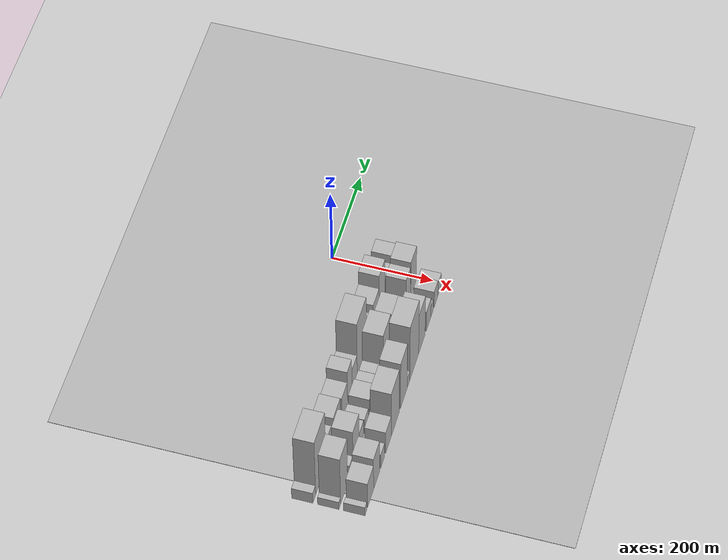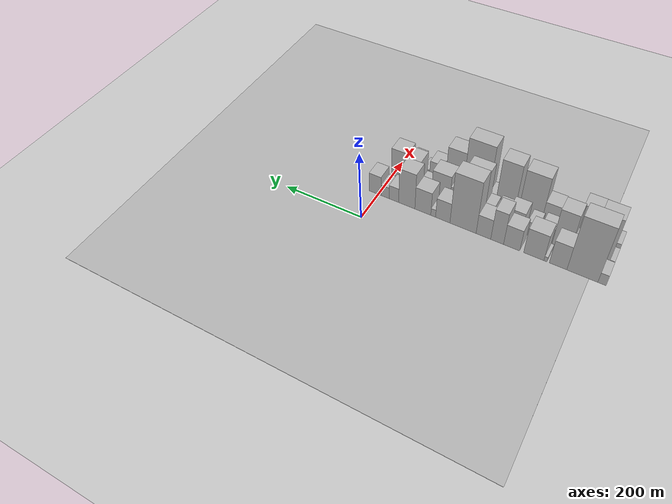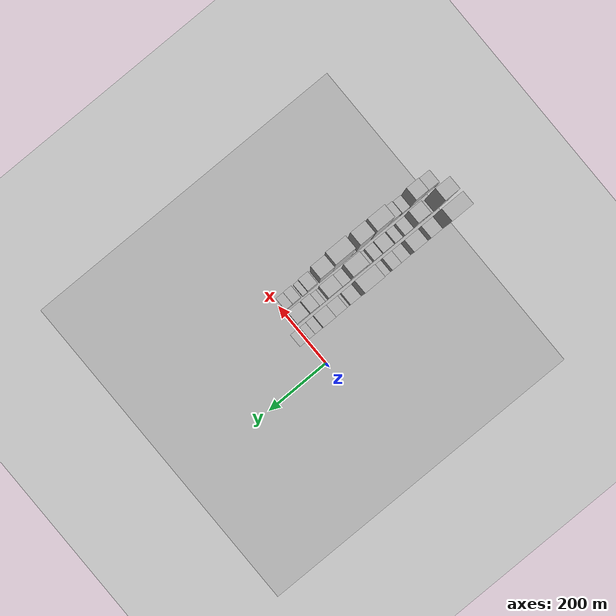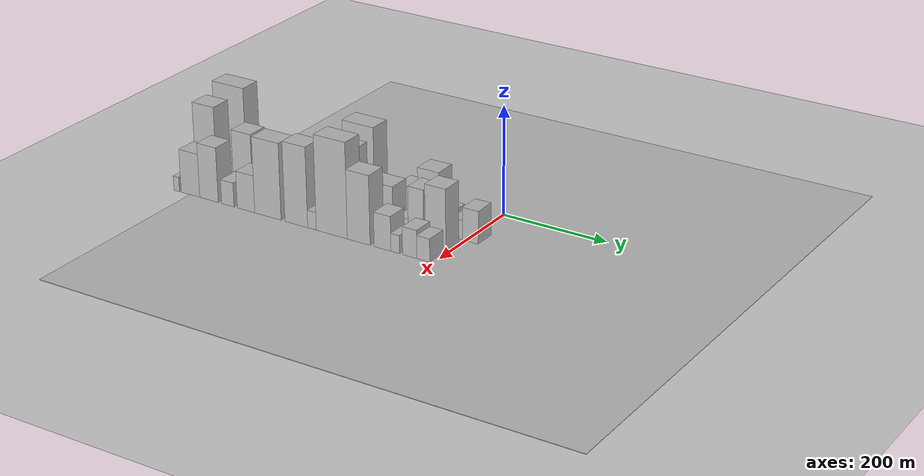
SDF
<sdf version="1.6">
 <world name="default">
  <include><name>ground_plane_1</name><uri>model://HANNAS_ground_plane</uri></include>
  <include>
   <name>ground_plane_2</name>
   <uri>model://HANNAS_ground_plane</uri>
   <pose>100 0 0  0 0 0</pose>
  </include>
  <model name="building_1">
   <static>1</static>
   <pose>100.0000 -527.2603 0 0.000000 0.000000 0.000000</pose>
   <link name="link">
    <pose>0 0 16.50 0 0 0</pose>
    <collision name="collision"><geometry><box><size>40.0000 17.4794 33.0000</size></box></geometry></collision>
    <visual name="visual">
     <cast_shadows>0</cast_shadows>
     <geometry><box><size>40.0000 17.4794 33.0000</size></box></geometry>
     <material>
      <script>
       <uri>model://HANNAS_wall/materials/scripts</uri>
       <uri>model://HANNAS_wall/materials/textures</uri>
       <name>vrc/HANNAS_wall</name>
      </script>
     </material>
    </visual>
   </link>
  </model>
  <model name="building_2">
   <static>1</static>
   <pose>100.0000 -485.1375 0 0.000000 0.000000 0.000000</pose>
   <link name="link">
    <pose>0 0 87.00 0 0 0</pose>
    <collision name="collision"><geometry><box><size>40.0000 66.7662 174.0000</size></box></geometry></collision>
    <visual name="visual">
     <cast_shadows>0</cast_shadows>
     <geometry><box><size>40.0000 66.7662 174.0000</size></box></geometry>
     <material>
      <script>
       <uri>model://HANNAS_wall/materials/scripts</uri>
       <uri>model://HANNAS_wall/materials/textures</uri>
       <name>vrc/HANNAS_wall</name>
      </script>
     </material>
    </visual>
   </link>
  </model>
  <model name="building_3">
   <static>1</static>
   <pose>100.0000 -432.5556 0 0.000000 0.000000 0.000000</pose>
   <link name="link">
    <pose>0 0 37.50 0 0 0</pose>
    <collision name="collision"><geometry><box><size>40.0000 38.3976 75.0000</size></box></geometry></collision>
    <visual name="visual">
     <cast_shadows>0</cast_shadows>
     <geometry><box><size>40.0000 38.3976 75.0000</size></box></geometry>
     <material>
      <script>
       <uri>model://HANNAS_wall/materials/scripts</uri>
       <uri>model://HANNAS_wall/materials/textures</uri>
       <name>vrc/HANNAS_wall</name>
      </script>
     </material>
    </visual>
   </link>
  </model>
  <model name="building_4">
   <static>1</static>
   <pose>100.0000 -404.8420 0 0.000000 0.000000 0.000000</pose>
   <link name="link">
    <pose>0 0 7.50 0 0 0</pose>
    <collision name="collision"><geometry><box><size>40.0000 7.0295 15.0000</size></box></geometry></collision>
    <visual name="visual">
     <cast_shadows>0</cast_shadows>
     <geometry><box><size>40.0000 7.0295 15.0000</size></box></geometry>
     <material>
      <script>
       <uri>model://HANNAS_wall/materials/scripts</uri>
       <uri>model://HANNAS_wall/materials/textures</uri>
       <name>vrc/HANNAS_wall</name>
      </script>
     </material>
    </visual>
   </link>
  </model>
  <model name="building_5">
   <static>1</static>
   <pose>100.0000 -378.5148 0 0.000000 0.000000 0.000000</pose>
   <link name="link">
    <pose>0 0 40.50 0 0 0</pose>
    <collision name="collision"><geometry><box><size>40.0000 45.6248 81.0000</size></box></geometry></collision>
    <visual name="visual">
     <cast_shadows>0</cast_shadows>
     <geometry><box><size>40.0000 45.6248 81.0000</size></box></geometry>
     <material>
      <script>
       <uri>model://HANNAS_wall/materials/scripts</uri>
       <uri>model://HANNAS_wall/materials/textures</uri>
       <name>vrc/HANNAS_wall</name>
      </script>
     </material>
    </visual>
   </link>
  </model>
  <model name="building_6">
   <static>1</static>
   <pose>100.0000 -328.0879 0 0.000000 0.000000 0.000000</pose>
   <link name="link">
    <pose>0 0 33.00 0 0 0</pose>
    <collision name="collision"><geometry><box><size>40.0000 37.2291 66.0000</size></box></geometry></collision>
    <visual name="visual">
     <cast_shadows>0</cast_shadows>
     <geometry><box><size>40.0000 37.2291 66.0000</size></box></geometry>
     <material>
      <script>
       <uri>model://HANNAS_wall/materials/scripts</uri>
       <uri>model://HANNAS_wall/materials/textures</uri>
       <name>vrc/HANNAS_wall</name>
      </script>
     </material>
    </visual>
   </link>
  </model>
  <model name="building_7">
   <static>1</static>
   <pose>100.0000 -294.4978 0 0.000000 0.000000 0.000000</pose>
   <link name="link">
    <pose>0 0 49.50 0 0 0</pose>
    <collision name="collision"><geometry><box><size>40.0000 29.9511 99.0000</size></box></geometry></collision>
    <visual name="visual">
     <cast_shadows>0</cast_shadows>
     <geometry><box><size>40.0000 29.9511 99.0000</size></box></geometry>
     <material>
      <script>
       <uri>model://HANNAS_wall/materials/scripts</uri>
       <uri>model://HANNAS_wall/materials/textures</uri>
       <name>vrc/HANNAS_wall</name>
      </script>
     </material>
    </visual>
   </link>
  </model>
  <model name="building_8">
   <static>1</static>
   <pose>100.0000 -262.1933 0 0.000000 0.000000 0.000000</pose>
   <link name="link">
    <pose>0 0 31.50 0 0 0</pose>
    <collision name="collision"><geometry><box><size>40.0000 34.6579 63.0000</size></box></geometry></collision>
    <visual name="visual">
     <cast_shadows>0</cast_shadows>
     <geometry><box><size>40.0000 34.6579 63.0000</size></box></geometry>
     <material>
      <script>
       <uri>model://HANNAS_wall/materials/scripts</uri>
       <uri>model://HANNAS_wall/materials/textures</uri>
       <name>vrc/HANNAS_wall</name>
      </script>
     </material>
    </visual>
   </link>
  </model>
  <model name="building_9">
   <static>1</static>
   <pose>100.0000 -213.1922 0 0.000000 0.000000 0.000000</pose>
   <link name="link">
    <pose>0 0 81.00 0 0 0</pose>
    <collision name="collision"><geometry><box><size>40.0000 63.3443 162.0000</size></box></geometry></collision>
    <visual name="visual">
     <cast_shadows>0</cast_shadows>
     <geometry><box><size>40.0000 63.3443 162.0000</size></box></geometry>
     <material>
      <script>
       <uri>model://HANNAS_wall/materials/scripts</uri>
       <uri>model://HANNAS_wall/materials/textures</uri>
       <name>vrc/HANNAS_wall</name>
      </script>
     </material>
    </visual>
   </link>
  </model>
  <model name="building_10">
   <static>1</static>
   <pose>100.0000 -163.7489 0 0.000000 0.000000 0.000000</pose>
   <link name="link">
    <pose>0 0 31.50 0 0 0</pose>
    <collision name="collision"><geometry><box><size>40.0000 35.5423 63.0000</size></box></geometry></collision>
    <visual name="visual">
     <cast_shadows>0</cast_shadows>
     <geometry><box><size>40.0000 35.5423 63.0000</size></box></geometry>
     <material>
      <script>
       <uri>model://HANNAS_wall/materials/scripts</uri>
       <uri>model://HANNAS_wall/materials/textures</uri>
       <name>vrc/HANNAS_wall</name>
      </script>
     </material>
    </visual>
   </link>
  </model>
  <model name="building_11">
   <static>1</static>
   <pose>100.0000 -140.0537 0 0.000000 0.000000 0.000000</pose>
   <link name="link">
    <pose>0 0 12.00 0 0 0</pose>
    <collision name="collision"><geometry><box><size>40.0000 11.8480 24.0000</size></box></geometry></collision>
    <visual name="visual">
     <cast_shadows>0</cast_shadows>
     <geometry><box><size>40.0000 11.8480 24.0000</size></box></geometry>
     <material>
      <script>
       <uri>model://HANNAS_wall/materials/scripts</uri>
       <uri>model://HANNAS_wall/materials/textures</uri>
       <name>vrc/HANNAS_wall</name>
      </script>
     </material>
    </visual>
   </link>
  </model>
  <model name="building_12">
   <static>1</static>
   <pose>100.0000 -114.0702 0 0.000000 0.000000 0.000000</pose>
   <link name="link">
    <pose>0 0 36.00 0 0 0</pose>
    <collision name="collision"><geometry><box><size>40.0000 40.1191 72.0000</size></box></geometry></collision>
    <visual name="visual">
     <cast_shadows>0</cast_shadows>
     <geometry><box><size>40.0000 40.1191 72.0000</size></box></geometry>
     <material>
      <script>
       <uri>model://HANNAS_wall/materials/scripts</uri>
       <uri>model://HANNAS_wall/materials/textures</uri>
       <name>vrc/HANNAS_wall</name>
      </script>
     </material>
    </visual>
   </link>
  </model>
  <model name="building_13">
   <static>1</static>
   <pose>100.0000 -73.1719 0 0.000000 0.000000 0.000000</pose>
   <link name="link">
    <pose>0 0 55.50 0 0 0</pose>
    <collision name="collision"><geometry><box><size>40.0000 41.6777 111.0000</size></box></geometry></collision>
    <visual name="visual">
     <cast_shadows>0</cast_shadows>
     <geometry><box><size>40.0000 41.6777 111.0000</size></box></geometry>
     <material>
      <script>
       <uri>model://HANNAS_wall/materials/scripts</uri>
       <uri>model://HANNAS_wall/materials/textures</uri>
       <name>vrc/HANNAS_wall</name>
      </script>
     </material>
    </visual>
   </link>
  </model>
  <model name="building_14">
   <static>1</static>
   <pose>100.0000 -39.7930 0 0.000000 0.000000 0.000000</pose>
   <link name="link">
    <pose>0 0 22.50 0 0 0</pose>
    <collision name="collision"><geometry><box><size>40.0000 25.0800 45.0000</size></box></geometry></collision>
    <visual name="visual">
     <cast_shadows>0</cast_shadows>
     <geometry><box><size>40.0000 25.0800 45.0000</size></box></geometry>
     <material>
      <script>
       <uri>model://HANNAS_wall/materials/scripts</uri>
       <uri>model://HANNAS_wall/materials/textures</uri>
       <name>vrc/HANNAS_wall</name>
      </script>
     </material>
    </visual>
   </link>
  </model>
  <model name="building_15">
   <static>1</static>
   <pose>100.0000 -16.8667 0 0.000000 0.000000 0.000000</pose>
   <link name="link">
    <pose>0 0 18.00 0 0 0</pose>
    <collision name="collision"><geometry><box><size>40.0000 20.7725 36.0000</size></box></geometry></collision>
    <visual name="visual">
     <cast_shadows>0</cast_shadows>
     <geometry><box><size>40.0000 20.7725 36.0000</size></box></geometry>
     <material>
      <script>
       <uri>model://HANNAS_wall/materials/scripts</uri>
       <uri>model://HANNAS_wall/materials/textures</uri>
       <name>vrc/HANNAS_wall</name>
      </script>
     </material>
    </visual>
   </link>
  </model>
  <model name="building_16">
   <static>1</static>
   <pose>100.0000 9.0122 0 0.000000 0.000000 0.000000</pose>
   <link name="link">
    <pose>0 0 30.00 0 0 0</pose>
    <collision name="collision"><geometry><box><size>40.0000 30.9853 60.0000</size></box></geometry></collision>
    <visual name="visual">
     <cast_shadows>0</cast_shadows>
     <geometry><box><size>40.0000 30.9853 60.0000</size></box></geometry>
     <material>
      <script>
       <uri>model://HANNAS_wall/materials/scripts</uri>
       <uri>model://HANNAS_wall/materials/textures</uri>
       <name>vrc/HANNAS_wall</name>
      </script>
     </material>
    </visual>
   </link>
  </model>
  <model name="building_31">
   <static>1</static>
   <pose>149.0000 -530.6760 0 0.000000 0.000000 0.000000</pose>
   <link name="link">
    <pose>0 0 12.00 0 0 0</pose>
    <collision name="collision"><geometry><box><size>40.0000 10.6480 24.0000</size></box></geometry></collision>
    <visual name="visual">
     <cast_shadows>0</cast_shadows>
     <geometry><box><size>40.0000 10.6480 24.0000</size></box></geometry>
     <material>
      <script>
       <uri>model://HANNAS_wall/materials/scripts</uri>
       <uri>model://HANNAS_wall/materials/textures</uri>
       <name>vrc/HANNAS_wall</name>
      </script>
     </material>
    </visual>
   </link>
  </model>
  <model name="building_32">
   <static>1</static>
   <pose>149.0000 -502.1637 0 0.000000 0.000000 0.000000</pose>
   <link name="link">
    <pose>0 0 75.00 0 0 0</pose>
    <collision name="collision"><geometry><box><size>40.0000 46.3765 150.0000</size></box></geometry></collision>
    <visual name="visual">
     <cast_shadows>0</cast_shadows>
     <geometry><box><size>40.0000 46.3765 150.0000</size></box></geometry>
     <material>
      <script>
       <uri>model://HANNAS_wall/materials/scripts</uri>
       <uri>model://HANNAS_wall/materials/textures</uri>
       <name>vrc/HANNAS_wall</name>
      </script>
     </material>
    </visual>
   </link>
  </model>
  <model name="building_33">
   <static>1</static>
   <pose>149.0000 -475.7980 0 0.000000 0.000000 0.000000</pose>
   <link name="link">
    <pose>0 0 7.50 0 0 0</pose>
    <collision name="collision"><geometry><box><size>40.0000 6.3549 15.0000</size></box></geometry></collision>
    <visual name="visual">
     <cast_shadows>0</cast_shadows>
     <geometry><box><size>40.0000 6.3549 15.0000</size></box></geometry>
     <material>
      <script>
       <uri>model://HANNAS_wall/materials/scripts</uri>
       <uri>model://HANNAS_wall/materials/textures</uri>
       <name>vrc/HANNAS_wall</name>
      </script>
     </material>
    </visual>
   </link>
  </model>
  <model name="building_34">
   <static>1</static>
   <pose>149.0000 -469.1543 0 0.000000 0.000000 0.000000</pose>
   <link name="link">
    <pose>0 0 7.50 0 0 0</pose>
    <collision name="collision"><geometry><box><size>40.0000 6.9325 15.0000</size></box></geometry></collision>
    <visual name="visual">
     <cast_shadows>0</cast_shadows>
     <geometry><box><size>40.0000 6.9325 15.0000</size></box></geometry>
     <material>
      <script>
       <uri>model://HANNAS_wall/materials/scripts</uri>
       <uri>model://HANNAS_wall/materials/textures</uri>
       <name>vrc/HANNAS_wall</name>
      </script>
     </material>
    </visual>
   </link>
  </model>
  <model name="building_35">
   <static>1</static>
   <pose>149.0000 -454.3602 0 0.000000 0.000000 0.000000</pose>
   <link name="link">
    <pose>0 0 19.50 0 0 0</pose>
    <collision name="collision"><geometry><box><size>40.0000 22.6557 39.0000</size></box></geometry></collision>
    <visual name="visual">
     <cast_shadows>0</cast_shadows>
     <geometry><box><size>40.0000 22.6557 39.0000</size></box></geometry>
     <material>
      <script>
       <uri>model://HANNAS_wall/materials/scripts</uri>
       <uri>model://HANNAS_wall/materials/textures</uri>
       <name>vrc/HANNAS_wall</name>
      </script>
     </material>
    </visual>
   </link>
  </model>
  <model name="building_36">
   <static>1</static>
   <pose>149.0000 -422.4298 0 0.000000 0.000000 0.000000</pose>
   <link name="link">
    <pose>0 0 58.50 0 0 0</pose>
    <collision name="collision"><geometry><box><size>40.0000 41.2049 117.0000</size></box></geometry></collision>
    <visual name="visual">
     <cast_shadows>0</cast_shadows>
     <geometry><box><size>40.0000 41.2049 117.0000</size></box></geometry>
     <material>
      <script>
       <uri>model://HANNAS_wall/materials/scripts</uri>
       <uri>model://HANNAS_wall/materials/textures</uri>
       <name>vrc/HANNAS_wall</name>
      </script>
     </material>
    </visual>
   </link>
  </model>
  <model name="building_37">
   <static>1</static>
   <pose>149.0000 -386.6518 0 0.000000 0.000000 0.000000</pose>
   <link name="link">
    <pose>0 0 25.50 0 0 0</pose>
    <collision name="collision"><geometry><box><size>40.0000 30.3512 51.0000</size></box></geometry></collision>
    <visual name="visual">
     <cast_shadows>0</cast_shadows>
     <geometry><box><size>40.0000 30.3512 51.0000</size></box></geometry>
     <material>
      <script>
       <uri>model://HANNAS_wall/materials/scripts</uri>
       <uri>model://HANNAS_wall/materials/textures</uri>
       <name>vrc/HANNAS_wall</name>
      </script>
     </material>
    </visual>
   </link>
  </model>
  <model name="building_38">
   <static>1</static>
   <pose>149.0000 -353.5843 0 0.000000 0.000000 0.000000</pose>
   <link name="link">
    <pose>0 0 22.50 0 0 0</pose>
    <collision name="collision"><geometry><box><size>40.0000 25.7837 45.0000</size></box></geometry></collision>
    <visual name="visual">
     <cast_shadows>0</cast_shadows>
     <geometry><box><size>40.0000 25.7837 45.0000</size></box></geometry>
     <material>
      <script>
       <uri>model://HANNAS_wall/materials/scripts</uri>
       <uri>model://HANNAS_wall/materials/textures</uri>
       <name>vrc/HANNAS_wall</name>
      </script>
     </material>
    </visual>
   </link>
  </model>
  <model name="building_39">
   <static>1</static>
   <pose>149.0000 -314.9544 0 0.000000 0.000000 0.000000</pose>
   <link name="link">
    <pose>0 0 31.50 0 0 0</pose>
    <collision name="collision"><geometry><box><size>40.0000 37.4761 63.0000</size></box></geometry></collision>
    <visual name="visual">
     <cast_shadows>0</cast_shadows>
     <geometry><box><size>40.0000 37.4761 63.0000</size></box></geometry>
     <material>
      <script>
       <uri>model://HANNAS_wall/materials/scripts</uri>
       <uri>model://HANNAS_wall/materials/textures</uri>
       <name>vrc/HANNAS_wall</name>
      </script>
     </material>
    </visual>
   </link>
  </model>
  <model name="building_40">
   <static>1</static>
   <pose>149.0000 -281.8113 0 0.000000 0.000000 0.000000</pose>
   <link name="link">
    <pose>0 0 25.50 0 0 0</pose>
    <collision name="collision"><geometry><box><size>40.0000 28.8101 51.0000</size></box></geometry></collision>
    <visual name="visual">
     <cast_shadows>0</cast_shadows>
     <geometry><box><size>40.0000 28.8101 51.0000</size></box></geometry>
     <material>
      <script>
       <uri>model://HANNAS_wall/materials/scripts</uri>
       <uri>model://HANNAS_wall/materials/textures</uri>
       <name>vrc/HANNAS_wall</name>
      </script>
     </material>
    </visual>
   </link>
  </model>
  <model name="building_41">
   <static>1</static>
   <pose>149.0000 -251.8208 0 0.000000 0.000000 0.000000</pose>
   <link name="link">
    <pose>0 0 22.50 0 0 0</pose>
    <collision name="collision"><geometry><box><size>40.0000 23.1710 45.0000</size></box></geometry></collision>
    <visual name="visual">
     <cast_shadows>0</cast_shadows>
     <geometry><box><size>40.0000 23.1710 45.0000</size></box></geometry>
     <material>
      <script>
       <uri>model://HANNAS_wall/materials/scripts</uri>
       <uri>model://HANNAS_wall/materials/textures</uri>
       <name>vrc/HANNAS_wall</name>
      </script>
     </material>
    </visual>
   </link>
  </model>
  <model name="building_42">
   <static>1</static>
   <pose>149.0000 -214.3614 0 0.000000 0.000000 0.000000</pose>
   <link name="link">
    <pose>0 0 69.00 0 0 0</pose>
    <collision name="collision"><geometry><box><size>40.0000 51.7477 138.0000</size></box></geometry></collision>
    <visual name="visual">
     <cast_shadows>0</cast_shadows>
     <geometry><box><size>40.0000 51.7477 138.0000</size></box></geometry>
     <material>
      <script>
       <uri>model://HANNAS_wall/materials/scripts</uri>
       <uri>model://HANNAS_wall/materials/textures</uri>
       <name>vrc/HANNAS_wall</name>
      </script>
     </material>
    </visual>
   </link>
  </model>
  <model name="building_43">
   <static>1</static>
   <pose>149.0000 -172.9483 0 0.000000 0.000000 0.000000</pose>
   <link name="link">
    <pose>0 0 30.00 0 0 0</pose>
    <collision name="collision"><geometry><box><size>40.0000 31.0785 60.0000</size></box></geometry></collision>
    <visual name="visual">
     <cast_shadows>0</cast_shadows>
     <geometry><box><size>40.0000 31.0785 60.0000</size></box></geometry>
     <material>
      <script>
       <uri>model://HANNAS_wall/materials/scripts</uri>
       <uri>model://HANNAS_wall/materials/textures</uri>
       <name>vrc/HANNAS_wall</name>
      </script>
     </material>
    </visual>
   </link>
  </model>
  <model name="building_44">
   <static>1</static>
   <pose>149.0000 -134.3167 0 0.000000 0.000000 0.000000</pose>
   <link name="link">
    <pose>0 0 45.00 0 0 0</pose>
    <collision name="collision"><geometry><box><size>40.0000 46.1847 90.0000</size></box></geometry></collision>
    <visual name="visual">
     <cast_shadows>0</cast_shadows>
     <geometry><box><size>40.0000 46.1847 90.0000</size></box></geometry>
     <material>
      <script>
       <uri>model://HANNAS_wall/materials/scripts</uri>
       <uri>model://HANNAS_wall/materials/textures</uri>
       <name>vrc/HANNAS_wall</name>
      </script>
     </material>
    </visual>
   </link>
  </model>
  <model name="building_45">
   <static>1</static>
   <pose>149.0000 -107.1081 0 0.000000 0.000000 0.000000</pose>
   <link name="link">
    <pose>0 0 9.00 0 0 0</pose>
    <collision name="collision"><geometry><box><size>40.0000 8.2325 18.0000</size></box></geometry></collision>
    <visual name="visual">
     <cast_shadows>0</cast_shadows>
     <geometry><box><size>40.0000 8.2325 18.0000</size></box></geometry>
     <material>
      <script>
       <uri>model://HANNAS_wall/materials/scripts</uri>
       <uri>model://HANNAS_wall/materials/textures</uri>
       <name>vrc/HANNAS_wall</name>
      </script>
     </material>
    </visual>
   </link>
  </model>
  <model name="building_46">
   <static>1</static>
   <pose>149.0000 -91.9620 0 0.000000 0.000000 0.000000</pose>
   <link name="link">
    <pose>0 0 19.50 0 0 0</pose>
    <collision name="collision"><geometry><box><size>40.0000 22.0598 39.0000</size></box></geometry></collision>
    <visual name="visual">
     <cast_shadows>0</cast_shadows>
     <geometry><box><size>40.0000 22.0598 39.0000</size></box></geometry>
     <material>
      <script>
       <uri>model://HANNAS_wall/materials/scripts</uri>
       <uri>model://HANNAS_wall/materials/textures</uri>
       <name>vrc/HANNAS_wall</name>
      </script>
     </material>
    </visual>
   </link>
  </model>
  <model name="building_47">
   <static>1</static>
   <pose>149.0000 -65.8754 0 0.000000 0.000000 0.000000</pose>
   <link name="link">
    <pose>0 0 49.50 0 0 0</pose>
    <collision name="collision"><geometry><box><size>40.0000 30.1134 99.0000</size></box></geometry></collision>
    <visual name="visual">
     <cast_shadows>0</cast_shadows>
     <geometry><box><size>40.0000 30.1134 99.0000</size></box></geometry>
     <material>
      <script>
       <uri>model://HANNAS_wall/materials/scripts</uri>
       <uri>model://HANNAS_wall/materials/textures</uri>
       <name>vrc/HANNAS_wall</name>
      </script>
     </material>
    </visual>
   </link>
  </model>
  <model name="building_48">
   <static>1</static>
   <pose>149.0000 -27.6340 0 0.000000 0.000000 0.000000</pose>
   <link name="link">
    <pose>0 0 55.50 0 0 0</pose>
    <collision name="collision"><geometry><box><size>40.0000 40.3695 111.0000</size></box></geometry></collision>
    <visual name="visual">
     <cast_shadows>0</cast_shadows>
     <geometry><box><size>40.0000 40.3695 111.0000</size></box></geometry>
     <material>
      <script>
       <uri>model://HANNAS_wall/materials/scripts</uri>
       <uri>model://HANNAS_wall/materials/textures</uri>
       <name>vrc/HANNAS_wall</name>
      </script>
     </material>
    </visual>
   </link>
  </model>
  <model name="building_66">
   <static>1</static>
   <pose>198.0000 -529.8317 0 0.000000 0.000000 0.000000</pose>
   <link name="link">
    <pose>0 0 13.50 0 0 0</pose>
    <collision name="collision"><geometry><box><size>40.0000 12.3367 27.0000</size></box></geometry></collision>
    <visual name="visual">
     <cast_shadows>0</cast_shadows>
     <geometry><box><size>40.0000 12.3367 27.0000</size></box></geometry>
     <material>
      <script>
       <uri>model://HANNAS_wall/materials/scripts</uri>
       <uri>model://HANNAS_wall/materials/textures</uri>
       <name>vrc/HANNAS_wall</name>
      </script>
     </material>
    </visual>
   </link>
  </model>
  <model name="building_67">
   <static>1</static>
   <pose>198.0000 -499.3544 0 0.000000 0.000000 0.000000</pose>
   <link name="link">
    <pose>0 0 40.50 0 0 0</pose>
    <collision name="collision"><geometry><box><size>40.0000 40.6179 81.0000</size></box></geometry></collision>
    <visual name="visual">
     <cast_shadows>0</cast_shadows>
     <geometry><box><size>40.0000 40.6179 81.0000</size></box></geometry>
     <material>
      <script>
       <uri>model://HANNAS_wall/materials/scripts</uri>
       <uri>model://HANNAS_wall/materials/textures</uri>
       <name>vrc/HANNAS_wall</name>
      </script>
     </material>
    </visual>
   </link>
  </model>
  <model name="building_68">
   <static>1</static>
   <pose>198.0000 -458.8203 0 0.000000 0.000000 0.000000</pose>
   <link name="link">
    <pose>0 0 51.00 0 0 0</pose>
    <collision name="collision"><geometry><box><size>40.0000 40.4504 102.0000</size></box></geometry></collision>
    <visual name="visual">
     <cast_shadows>0</cast_shadows>
     <geometry><box><size>40.0000 40.4504 102.0000</size></box></geometry>
     <material>
      <script>
       <uri>model://HANNAS_wall/materials/scripts</uri>
       <uri>model://HANNAS_wall/materials/textures</uri>
       <name>vrc/HANNAS_wall</name>
      </script>
     </material>
    </visual>
   </link>
  </model>
  <model name="building_69">
   <static>1</static>
   <pose>198.0000 -418.2202 0 0.000000 0.000000 0.000000</pose>
   <link name="link">
    <pose>0 0 22.50 0 0 0</pose>
    <collision name="collision"><geometry><box><size>40.0000 26.7500 45.0000</size></box></geometry></collision>
    <visual name="visual">
     <cast_shadows>0</cast_shadows>
     <geometry><box><size>40.0000 26.7500 45.0000</size></box></geometry>
     <material>
      <script>
       <uri>model://HANNAS_wall/materials/scripts</uri>
       <uri>model://HANNAS_wall/materials/textures</uri>
       <name>vrc/HANNAS_wall</name>
      </script>
     </material>
    </visual>
   </link>
  </model>
  <model name="building_70">
   <static>1</static>
   <pose>198.0000 -379.2963 0 0.000000 0.000000 0.000000</pose>
   <link name="link">
    <pose>0 0 34.50 0 0 0</pose>
    <collision name="collision"><geometry><box><size>40.0000 37.0977 69.0000</size></box></geometry></collision>
    <visual name="visual">
     <cast_shadows>0</cast_shadows>
     <geometry><box><size>40.0000 37.0977 69.0000</size></box></geometry>
     <material>
      <script>
       <uri>model://HANNAS_wall/materials/scripts</uri>
       <uri>model://HANNAS_wall/materials/textures</uri>
       <name>vrc/HANNAS_wall</name>
      </script>
     </material>
    </visual>
   </link>
  </model>
  <model name="building_71">
   <static>1</static>
   <pose>198.0000 -333.0107 0 0.000000 0.000000 0.000000</pose>
   <link name="link">
    <pose>0 0 70.50 0 0 0</pose>
    <collision name="collision"><geometry><box><size>40.0000 55.4733 141.0000</size></box></geometry></collision>
    <visual name="visual">
     <cast_shadows>0</cast_shadows>
     <geometry><box><size>40.0000 55.4733 141.0000</size></box></geometry>
     <material>
      <script>
       <uri>model://HANNAS_wall/materials/scripts</uri>
       <uri>model://HANNAS_wall/materials/textures</uri>
       <name>vrc/HANNAS_wall</name>
      </script>
     </material>
    </visual>
   </link>
  </model>
  <model name="building_72">
   <static>1</static>
   <pose>198.0000 -273.7879 0 0.000000 0.000000 0.000000</pose>
   <link name="link">
    <pose>0 0 73.50 0 0 0</pose>
    <collision name="collision"><geometry><box><size>40.0000 46.9724 147.0000</size></box></geometry></collision>
    <visual name="visual">
     <cast_shadows>0</cast_shadows>
     <geometry><box><size>40.0000 46.9724 147.0000</size></box></geometry>
     <material>
      <script>
       <uri>model://HANNAS_wall/materials/scripts</uri>
       <uri>model://HANNAS_wall/materials/textures</uri>
       <name>vrc/HANNAS_wall</name>
      </script>
     </material>
    </visual>
   </link>
  </model>
  <model name="building_73">
   <static>1</static>
   <pose>198.0000 -241.4409 0 0.000000 0.000000 0.000000</pose>
   <link name="link">
    <pose>0 0 16.50 0 0 0</pose>
    <collision name="collision"><geometry><box><size>40.0000 17.7215 33.0000</size></box></geometry></collision>
    <visual name="visual">
     <cast_shadows>0</cast_shadows>
     <geometry><box><size>40.0000 17.7215 33.0000</size></box></geometry>
     <material>
      <script>
       <uri>model://HANNAS_wall/materials/scripts</uri>
       <uri>model://HANNAS_wall/materials/textures</uri>
       <name>vrc/HANNAS_wall</name>
      </script>
     </material>
    </visual>
   </link>
  </model>
  <model name="building_74">
   <static>1</static>
   <pose>198.0000 -201.0453 0 0.000000 0.000000 0.000000</pose>
   <link name="link">
    <pose>0 0 87.00 0 0 0</pose>
    <collision name="collision"><geometry><box><size>40.0000 63.0697 174.0000</size></box></geometry></collision>
    <visual name="visual">
     <cast_shadows>0</cast_shadows>
     <geometry><box><size>40.0000 63.0697 174.0000</size></box></geometry>
     <material>
      <script>
       <uri>model://HANNAS_wall/materials/scripts</uri>
       <uri>model://HANNAS_wall/materials/textures</uri>
       <name>vrc/HANNAS_wall</name>
      </script>
     </material>
    </visual>
   </link>
  </model>
  <model name="building_75">
   <static>1</static>
   <pose>198.0000 -146.6977 0 0.000000 0.000000 0.000000</pose>
   <link name="link">
    <pose>0 0 63.00 0 0 0</pose>
    <collision name="collision"><geometry><box><size>40.0000 45.6255 126.0000</size></box></geometry></collision>
    <visual name="visual">
     <cast_shadows>0</cast_shadows>
     <geometry><box><size>40.0000 45.6255 126.0000</size></box></geometry>
     <material>
      <script>
       <uri>model://HANNAS_wall/materials/scripts</uri>
       <uri>model://HANNAS_wall/materials/textures</uri>
       <name>vrc/HANNAS_wall</name>
      </script>
     </material>
    </visual>
   </link>
  </model>
  <model name="building_76">
   <static>1</static>
   <pose>198.0000 -99.2928 0 0.000000 0.000000 0.000000</pose>
   <link name="link">
    <pose>0 0 31.50 0 0 0</pose>
    <collision name="collision"><geometry><box><size>40.0000 33.1843 63.0000</size></box></geometry></collision>
    <visual name="visual">
     <cast_shadows>0</cast_shadows>
     <geometry><box><size>40.0000 33.1843 63.0000</size></box></geometry>
     <material>
      <script>
       <uri>model://HANNAS_wall/materials/scripts</uri>
       <uri>model://HANNAS_wall/materials/textures</uri>
       <name>vrc/HANNAS_wall</name>
      </script>
     </material>
    </visual>
   </link>
  </model>
  <model name="building_77">
   <static>1</static>
   <pose>198.0000 -74.1456 0 0.000000 0.000000 0.000000</pose>
   <link name="link">
    <pose>0 0 16.50 0 0 0</pose>
    <collision name="collision"><geometry><box><size>40.0000 17.1100 33.0000</size></box></geometry></collision>
    <visual name="visual">
     <cast_shadows>0</cast_shadows>
     <geometry><box><size>40.0000 17.1100 33.0000</size></box></geometry>
     <material>
      <script>
       <uri>model://HANNAS_wall/materials/scripts</uri>
       <uri>model://HANNAS_wall/materials/textures</uri>
       <name>vrc/HANNAS_wall</name>
      </script>
     </material>
    </visual>
   </link>
  </model>
  <model name="building_78">
   <static>1</static>
   <pose>198.0000 -45.7106 0 0.000000 0.000000 0.000000</pose>
   <link name="link">
    <pose>0 0 25.50 0 0 0</pose>
    <collision name="collision"><geometry><box><size>40.0000 27.7600 51.0000</size></box></geometry></collision>
    <visual name="visual">
     <cast_shadows>0</cast_shadows>
     <geometry><box><size>40.0000 27.7600 51.0000</size></box></geometry>
     <material>
      <script>
       <uri>model://HANNAS_wall/materials/scripts</uri>
       <uri>model://HANNAS_wall/materials/textures</uri>
       <name>vrc/HANNAS_wall</name>
      </script>
     </material>
    </visual>
   </link>
  </model>
  <model name="building_79">
   <static>1</static>
   <pose>198.0000 -19.3250 0 0.000000 0.000000 0.000000</pose>
   <link name="link">
    <pose>0 0 21.00 0 0 0</pose>
    <collision name="collision"><geometry><box><size>40.0000 25.0113 42.0000</size></box></geometry></collision>
    <visual name="visual">
     <cast_shadows>0</cast_shadows>
     <geometry><box><size>40.0000 25.0113 42.0000</size></box></geometry>
     <material>
      <script>
       <uri>model://HANNAS_wall/materials/scripts</uri>
       <uri>model://HANNAS_wall/materials/textures</uri>
       <name>vrc/HANNAS_wall</name>
      </script>
     </material>
    </visual>
   </link>
  </model>
 </world>
</sdf>
